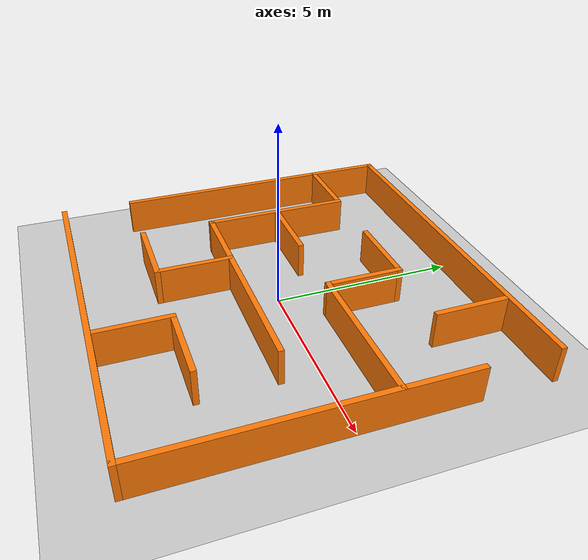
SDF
<sdf version="1.7">
  <world name="default">
    <light name="sun" type="directional">
      <cast_shadows>0</cast_shadows>
      <pose>0 0 10 0 -0 0</pose>
      <diffuse>0.8 0.8 0.8 1</diffuse>
      <specular>0.2 0.2 0.2 1</specular>
      <attenuation>
        <range>1000</range>
        <constant>0.9</constant>
        <linear>0.01</linear>
        <quadratic>0.001</quadratic>
      </attenuation>
      <direction>-0.5 0.1 -0.9</direction>
      <spot>
        <inner_angle>0</inner_angle>
        <outer_angle>0</outer_angle>
        <falloff>0</falloff>
      </spot>
    </light>
    <model name="ground_plane">
      <static>1</static>
      <link name="link">
        <collision name="collision">
          <geometry>
            <plane>
              <normal>0 0 1</normal>
              <size>100 100</size>
            </plane>
          </geometry>
          <surface>
            <friction>
              <ode>
                <mu>100</mu>
                <mu2>50</mu2>
              </ode>
              <torsional>
                <ode />
              </torsional>
            </friction>
            <contact>
              <ode />
            </contact>
            <bounce />
          </surface>
          <max_contacts>10</max_contacts>
        </collision>
        <visual name="visual">
          <cast_shadows>0</cast_shadows>
          <geometry>
            <plane>
              <normal>0 0 1</normal>
              <size>100 100</size>
            </plane>
          </geometry>
          <material>
            <script>
              <uri>file://media/materials/scripts/gazebo.material</uri>
              <name>Gazebo/Grey</name>
            </script>
          </material>
        </visual>
        <self_collide>0</self_collide>
        <enable_wind>0</enable_wind>
        <kinematic>0</kinematic>
      </link>
    </model>
    <gravity>0 0 -9.8</gravity>
    <magnetic_field>6e-06 2.3e-05 -4.2e-05</magnetic_field>
    <atmosphere type="adiabatic" />
    <physics type="ode">
      <max_step_size>0.005</max_step_size>
      <real_time_factor>1</real_time_factor>
      <real_time_update_rate>50</real_time_update_rate>
    </physics>
    <scene>
      <ambient>0.4 0.4 0.4 1</ambient>
      <background>0.7 0.7 0.7 1</background>
      <shadows>0</shadows>
    </scene>
    <audio>
      <device>default</device>
    </audio>
    <wind />
    <spherical_coordinates>
      <surface_model>EARTH_WGS84</surface_model>
      <latitude_deg>0</latitude_deg>
      <longitude_deg>0</longitude_deg>
      <elevation>0</elevation>
      <heading_deg>0</heading_deg>
    </spherical_coordinates>
    <model name="Maze-Map">
      <pose>0 0 0 0 0 0</pose>
      <link name="Wall_0">
        <collision name="Wall_0_Collision">
          <geometry>
            <box>
              <size>10.15 0.15 1</size>
            </box>
          </geometry>
          <pose>0 0 0.5 0 -0 0</pose>
        </collision>
        <visual name="Wall_0_Visual">
          <pose>0 0 0.5 0 -0 0</pose>
          <geometry>
            <box>
              <size>10.15 0.15 1</size>
            </box>
          </geometry>
          <material>
            <script>
              <uri>file://media/materials/scripts/gazebo.material</uri>
              <name>Gazebo/Grey</name>
            </script>
            <ambient>0.996078 0.47451 0.0196078 1</ambient>
          </material>
          <meta>
            <layer>0</layer>
          </meta>
        </visual>
        <pose>-0 -5 0 0 -0 0</pose>
        <self_collide>0</self_collide>
        <enable_wind>0</enable_wind>
        <kinematic>0</kinematic>
      </link>
      <link name="Wall_10">
        <collision name="Wall_10_Collision">
          <geometry>
            <box>
              <size>2.15 0.15 1</size>
            </box>
          </geometry>
          <pose>0 0 0.5 0 -0 0</pose>
        </collision>
        <visual name="Wall_10_Visual">
          <pose>0 0 0.5 0 -0 0</pose>
          <geometry>
            <box>
              <size>2.15 0.15 1</size>
            </box>
          </geometry>
          <material>
            <script>
              <uri>file://media/materials/scripts/gazebo.material</uri>
              <name>Gazebo/Grey</name>
            </script>
            <ambient>0.996078 0.47451 0.0196078 1</ambient>
          </material>
          <meta>
            <layer>0</layer>
          </meta>
        </visual>
        <pose>2 -3 0 0 -0 0</pose>
        <self_collide>0</self_collide>
        <enable_wind>0</enable_wind>
        <kinematic>0</kinematic>
      </link>
      <link name="Wall_12">
        <collision name="Wall_12_Collision">
          <geometry>
            <box>
              <size>2.15 0.15 1</size>
            </box>
          </geometry>
          <pose>0 0 0.5 0 -0 0</pose>
        </collision>
        <visual name="Wall_12_Visual">
          <pose>0 0 0.5 0 -0 0</pose>
          <geometry>
            <box>
              <size>2.15 0.15 1</size>
            </box>
          </geometry>
          <material>
            <script>
              <uri>file://media/materials/scripts/gazebo.material</uri>
              <name>Gazebo/Grey</name>
            </script>
            <ambient>0.996078 0.47451 0.0196078 1</ambient>
          </material>
          <meta>
            <layer>0</layer>
          </meta>
        </visual>
        <pose>-4 3 0 0 -0 0</pose>
        <self_collide>0</self_collide>
        <enable_wind>0</enable_wind>
        <kinematic>0</kinematic>
      </link>
      <link name="Wall_14">
        <collision name="Wall_14_Collision">
          <geometry>
            <box>
              <size>4.15 0.15 1</size>
            </box>
          </geometry>
          <pose>0 0 0.5 0 -0 0</pose>
        </collision>
        <visual name="Wall_14_Visual">
          <pose>0 0 0.5 0 -0 0</pose>
          <geometry>
            <box>
              <size>4.15 0.15 1</size>
            </box>
          </geometry>
          <material>
            <script>
              <uri>file://media/materials/scripts/gazebo.material</uri>
              <name>Gazebo/Grey</name>
            </script>
            <ambient>0.996078 0.47451 0.0196078 1</ambient>
          </material>
          <meta>
            <layer>0</layer>
          </meta>
        </visual>
        <pose>-3 1 0 0 -0 -1.5708</pose>
        <self_collide>0</self_collide>
        <enable_wind>0</enable_wind>
        <kinematic>0</kinematic>
      </link>
      <link name="Wall_16">
        <collision name="Wall_16_Collision">
          <geometry>
            <box>
              <size>6.15 0.15 1</size>
            </box>
          </geometry>
          <pose>0 0 0.5 0 -0 0</pose>
        </collision>
        <visual name="Wall_16_Visual">
          <pose>0 0 0.5 0 -0 0</pose>
          <geometry>
            <box>
              <size>6.15 0.15 1</size>
            </box>
          </geometry>
          <material>
            <script>
              <uri>file://media/materials/scripts/gazebo.material</uri>
              <name>Gazebo/Grey</name>
            </script>
            <ambient>0.996078 0.47451 0.0196078 1</ambient>
          </material>
          <meta>
            <layer>0</layer>
          </meta>
        </visual>
        <pose>-0 -1 0 0 -0 0</pose>
        <self_collide>0</self_collide>
        <enable_wind>0</enable_wind>
        <kinematic>0</kinematic>
      </link>
      <link name="Wall_18">
        <collision name="Wall_18_Collision">
          <geometry>
            <box>
              <size>2.15 0.15 1</size>
            </box>
          </geometry>
          <pose>0 0 0.5 0 -0 0</pose>
        </collision>
        <visual name="Wall_18_Visual">
          <pose>0 0 0.5 0 -0 0</pose>
          <geometry>
            <box>
              <size>2.15 0.15 1</size>
            </box>
          </geometry>
          <material>
            <script>
              <uri>file://media/materials/scripts/gazebo.material</uri>
              <name>Gazebo/Grey</name>
            </script>
            <ambient>0.996078 0.47451 0.0196078 1</ambient>
          </material>
          <meta>
            <layer>0</layer>
          </meta>
        </visual>
        <pose>-2 1 0 0 -0 0</pose>
        <self_collide>0</self_collide>
        <enable_wind>0</enable_wind>
        <kinematic>0</kinematic>
      </link>
      <link name="Wall_2">
        <collision name="Wall_2_Collision">
          <geometry>
            <box>
              <size>8.15 0.15 1</size>
            </box>
          </geometry>
          <pose>0 0 0.5 0 -0 0</pose>
        </collision>
        <visual name="Wall_2_Visual">
          <pose>0 0 0.5 0 -0 0</pose>
          <geometry>
            <box>
              <size>8.15 0.15 1</size>
            </box>
          </geometry>
          <material>
            <script>
              <uri>file://media/materials/scripts/gazebo.material</uri>
              <name>Gazebo/Grey</name>
            </script>
            <ambient>0.996078 0.47451 0.0196078 1</ambient>
          </material>
          <meta>
            <layer>0</layer>
          </meta>
        </visual>
        <pose>-5 1 0 0 -0 1.5708</pose>
        <self_collide>0</self_collide>
        <enable_wind>0</enable_wind>
        <kinematic>0</kinematic>
      </link>
      <link name="Wall_20">
        <collision name="Wall_20_Collision">
          <geometry>
            <box>
              <size>2.15 0.15 1</size>
            </box>
          </geometry>
          <pose>0 0 0.5 0 -0 0</pose>
        </collision>
        <visual name="Wall_20_Visual">
          <pose>0 0 0.5 0 -0 0</pose>
          <geometry>
            <box>
              <size>2.15 0.15 1</size>
            </box>
          </geometry>
          <material>
            <script>
              <uri>file://media/materials/scripts/gazebo.material</uri>
              <name>Gazebo/Grey</name>
            </script>
            <ambient>0.996078 0.47451 0.0196078 1</ambient>
          </material>
          <meta>
            <layer>0</layer>
          </meta>
        </visual>
        <pose>-1 -2 0 0 -0 -1.5708</pose>
        <self_collide>0</self_collide>
        <enable_wind>0</enable_wind>
        <kinematic>0</kinematic>
      </link>
      <link name="Wall_22">
        <collision name="Wall_22_Collision">
          <geometry>
            <box>
              <size>2.15 0.15 1</size>
            </box>
          </geometry>
          <pose>0 0 0.5 0 -0 0</pose>
        </collision>
        <visual name="Wall_22_Visual">
          <pose>0 0 0.5 0 -0 0</pose>
          <geometry>
            <box>
              <size>2.15 0.15 1</size>
            </box>
          </geometry>
          <material>
            <script>
              <uri>file://media/materials/scripts/gazebo.material</uri>
              <name>Gazebo/Grey</name>
            </script>
            <ambient>0.996078 0.47451 0.0196078 1</ambient>
          </material>
          <meta>
            <layer>0</layer>
          </meta>
        </visual>
        <pose>-2 -3 0 0 -0 3.14159</pose>
        <self_collide>0</self_collide>
        <enable_wind>0</enable_wind>
        <kinematic>0</kinematic>
      </link>
      <link name="Wall_24">
        <collision name="Wall_24_Collision">
          <geometry>
            <box>
              <size>2.15 0.15 1</size>
            </box>
          </geometry>
          <pose>0 0 0.5 0 -0 0</pose>
        </collision>
        <visual name="Wall_24_Visual">
          <pose>0 0 0.5 0 -0 0</pose>
          <geometry>
            <box>
              <size>2.15 0.15 1</size>
            </box>
          </geometry>
          <material>
            <script>
              <uri>file://media/materials/scripts/gazebo.material</uri>
              <name>Gazebo/Grey</name>
            </script>
            <ambient>0.996078 0.47451 0.0196078 1</ambient>
          </material>
          <meta>
            <layer>0</layer>
          </meta>
        </visual>
        <pose>3 4 0 0 -0 -1.5708</pose>
        <self_collide>0</self_collide>
        <enable_wind>0</enable_wind>
        <kinematic>0</kinematic>
      </link>
      <link name="Wall_26">
        <collision name="Wall_26_Collision">
          <geometry>
            <box>
              <size>4.15 0.15 1</size>
            </box>
          </geometry>
          <pose>0 0 0.5 0 -0 0</pose>
        </collision>
        <visual name="Wall_26_Visual">
          <pose>0 0 0.5 0 -0 0</pose>
          <geometry>
            <box>
              <size>4.15 0.15 1</size>
            </box>
          </geometry>
          <material>
            <script>
              <uri>file://media/materials/scripts/gazebo.material</uri>
              <name>Gazebo/Grey</name>
            </script>
            <ambient>0.996078 0.47451 0.0196078 1</ambient>
          </material>
          <meta>
            <layer>0</layer>
          </meta>
        </visual>
        <pose>3 1 0 0 -0 3.14159</pose>
        <self_collide>0</self_collide>
        <enable_wind>0</enable_wind>
        <kinematic>0</kinematic>
      </link>
      <link name="Wall_28">
        <collision name="Wall_28_Collision">
          <geometry>
            <box>
              <size>2.15 0.15 1</size>
            </box>
          </geometry>
          <pose>0 0 0.5 0 -0 0</pose>
        </collision>
        <visual name="Wall_28_Visual">
          <pose>0 0 0.5 0 -0 0</pose>
          <geometry>
            <box>
              <size>2.15 0.15 1</size>
            </box>
          </geometry>
          <material>
            <script>
              <uri>file://media/materials/scripts/gazebo.material</uri>
              <name>Gazebo/Grey</name>
            </script>
            <ambient>0.996078 0.47451 0.0196078 1</ambient>
          </material>
          <meta>
            <layer>0</layer>
          </meta>
        </visual>
        <pose>1 2 0 0 -0 1.5708</pose>
        <self_collide>0</self_collide>
        <enable_wind>0</enable_wind>
        <kinematic>0</kinematic>
      </link>
      <link name="Wall_30">
        <collision name="Wall_30_Collision">
          <geometry>
            <box>
              <size>2.15 0.15 1</size>
            </box>
          </geometry>
          <pose>0 0 0.5 0 -0 0</pose>
        </collision>
        <visual name="Wall_30_Visual">
          <pose>0 0 0.5 0 -0 0</pose>
          <geometry>
            <box>
              <size>2.15 0.15 1</size>
            </box>
          </geometry>
          <material>
            <script>
              <uri>file://media/materials/scripts/gazebo.material</uri>
              <name>Gazebo/Grey</name>
            </script>
            <ambient>0.996078 0.47451 0.0196078 1</ambient>
          </material>
          <meta>
            <layer>0</layer>
          </meta>
        </visual>
        <pose>-0 3 0 0 -0 3.14159</pose>
        <self_collide>0</self_collide>
        <enable_wind>0</enable_wind>
        <kinematic>0</kinematic>
      </link>
      <link name="Wall_4">
        <collision name="Wall_4_Collision">
          <geometry>
            <box>
              <size>10.15 0.15 1</size>
            </box>
          </geometry>
          <pose>0 0 0.5 0 -0 0</pose>
        </collision>
        <visual name="Wall_4_Visual">
          <pose>0 0 0.5 0 -0 0</pose>
          <geometry>
            <box>
              <size>10.15 0.15 1</size>
            </box>
          </geometry>
          <material>
            <script>
              <uri>file://media/materials/scripts/gazebo.material</uri>
              <name>Gazebo/Grey</name>
            </script>
            <ambient>0.996078 0.47451 0.0196078 1</ambient>
          </material>
          <meta>
            <layer>0</layer>
          </meta>
        </visual>
        <pose>-0 5 0 0 -0 0</pose>
        <self_collide>0</self_collide>
        <enable_wind>0</enable_wind>
        <kinematic>0</kinematic>
      </link>
      <link name="Wall_6">
        <collision name="Wall_6_Collision">
          <geometry>
            <box>
              <size>8.15 0.15 1</size>
            </box>
          </geometry>
          <pose>0 0 0.5 0 -0 0</pose>
        </collision>
        <visual name="Wall_6_Visual">
          <pose>0 0 0.5 0 -0 0</pose>
          <geometry>
            <box>
              <size>8.15 0.15 1</size>
            </box>
          </geometry>
          <material>
            <script>
              <uri>file://media/materials/scripts/gazebo.material</uri>
              <name>Gazebo/Grey</name>
            </script>
            <ambient>0.996078 0.47451 0.0196078 1</ambient>
          </material>
          <meta>
            <layer>0</layer>
          </meta>
        </visual>
        <pose>5 -1 0 0 -0 -1.5708</pose>
        <self_collide>0</self_collide>
        <enable_wind>0</enable_wind>
        <kinematic>0</kinematic>
      </link>
      <link name="Wall_8">
        <collision name="Wall_8_Collision">
          <geometry>
            <box>
              <size>2.15 0.15 1</size>
            </box>
          </geometry>
          <pose>0 0 0.5 0 -0 0</pose>
        </collision>
        <visual name="Wall_8_Visual">
          <pose>0 0 0.5 0 -0 0</pose>
          <geometry>
            <box>
              <size>2.15 0.15 1</size>
            </box>
          </geometry>
          <material>
            <script>
              <uri>file://media/materials/scripts/gazebo.material</uri>
              <name>Gazebo/Grey</name>
            </script>
            <ambient>0.996078 0.47451 0.0196078 1</ambient>
          </material>
          <meta>
            <layer>0</layer>
          </meta>
        </visual>
        <pose>1 -4 0 0 -0 1.5708</pose>
        <self_collide>0</self_collide>
        <enable_wind>0</enable_wind>
        <kinematic>0</kinematic>
      </link>
      <static>1</static>
    </model>
    <gui fullscreen="0">
      <camera name="user_camera">
        <pose>5.34195 3.99376 21.1859 1.2e-05 1.5698 1.56804</pose>
        <view_controller>orbit</view_controller>
        <projection_type>perspective</projection_type>
      </camera>
    </gui>
  </world>
</sdf>
